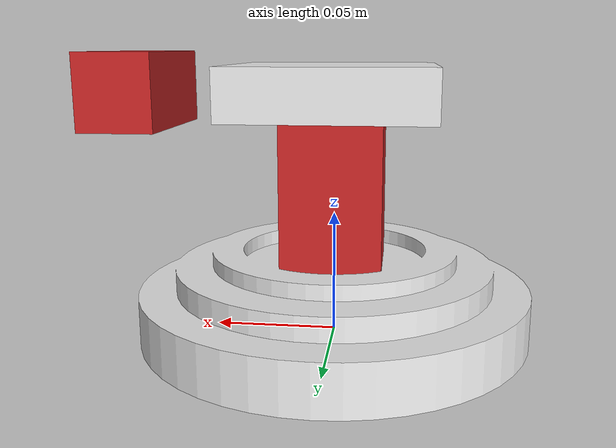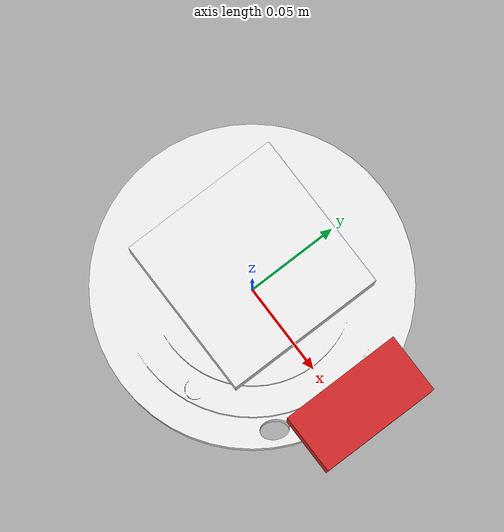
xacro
<?xml version="1.0"?>
<robot xmlns:xacro="http://www.ros.org/wiki/xacro">
    <link name="head_base">
        <visual>
            <origin xyz="0 0 0" rpy="0 0 0" />
            <geometry>
                <mesh filename="package://description/meshes/head_base.stl"
                    scale="0.001 0.001 0.001" />
            </geometry>
            <material name="white" />
        </visual>
        <collision>
            <origin xyz="0 0 0" rpy="0 0 0" />
            <geometry>
                <mesh filename="package://description/meshes/head_base.stl"
                    scale="0.001 0.001 0.001" />
            </geometry>
        </collision>
        <xacro:box_inertia m="0.11" x="0.16" y="0.16" z="0.03540" o_xyz="0 0 0" o_rpy="0 0 0" />
    </link>

    <link name="neck_pan_link">
        <visual>
            <origin xyz="0 0 0.04" rpy="0 0 0" />
            <geometry>
                <box size="0.04 0.04 0.08" />
            </geometry>
            <material name="red" />
        </visual>
        <collision>
            <origin xyz="0 0 0.04" rpy="0 0 0" />
            <geometry>
                <box size="0.04 0.04 0.08" />
            </geometry>
        </collision>
        <xacro:box_inertia m="0.02" x="0.04" y="0.04" z="0.08" o_xyz="0 0 0.04" o_rpy="0 0 0" />
    </link>

    <link name="neck_tilt_link">
        <visual>
            <origin xyz="0 0 0" rpy="0 0 0" />
            <geometry>
                <box size="0.08 0.08 0.02" />
            </geometry>
            <material name="white" />
        </visual>
        <collision>
            <origin xyz="0 0 0" rpy="0 0 0" />
            <geometry>
                <box size="0.08 0.08 0.02" />
            </geometry>
        </collision>
        <xacro:box_inertia m="0.01" x="0.08" y="0.08" z="0.02" o_xyz="0 0 0" o_rpy="0 0 0" />
    </link>

    <link name="camera_link">
        <visual>
            <origin xyz="0 0 0" rpy="0 0 0" />
            <geometry>
                <box size="0.03 0.06 0.03" />
            </geometry>
            <material name="red" />
        </visual>
        <collision>
            <origin xyz="0 0 0" rpy="0 0 0" />
            <geometry>
                <box size="0.03 0.06 0.03" />
            </geometry>
        </collision>
        <xacro:box_inertia m="0.01" x="0.03" y="0.06" z="0.03" o_xyz="0 0 0" o_rpy="0 0 0" />
    </link>

    <joint name="head_base_neck_pan_link" type="revolute">
        <parent link="head_base" />
        <child link="neck_pan_link" />
        <origin xyz="0 0 0.02" rpy="0 0 0" />
        <limit lower="-${pi}" upper="${pi}" effort="100" velocity="100" />
        <axis xyz="0 0 1" />
    </joint>

    <joint name="head_base_tilt_pan_link" type="revolute">
        <parent link="neck_pan_link" />
        <child link="neck_tilt_link" />
        <origin xyz="0 0 0.08" rpy="0 0 0" />
        <limit lower="-${pi}" upper="${pi}" effort="100" velocity="100" />
        <axis xyz="0 1 0" />
        <dynamics damping="2.0" friction="1.0" />
    </joint>

    <joint name="neck_tilt_camera_joint" type="fixed">
        <parent link="neck_tilt_link" />
        <child link="camera_link" />
        <origin xyz="0.08 0 0" rpy="0 0 0" />
    </joint>

    <gazebo reference="camera_link">
        <sensor name="camera" type="camera">
            <pose>0 0 0 0 0 0</pose>
            <topic>camera/image_raw</topic>
            <gz_frame_id>camera_link</gz_frame_id>
            <update_rate>30</update_rate>
            <always_on>1</always_on>
            <visualize>true</visualize>
            <camera>
                <horizontal_fov>1.047</horizontal_fov>
                <image>
                    <width>640</width>
                    <height>480</height>
                    <format>R8G8B8</format>
                </image>
                <clip>
                    <near>0.1</near>
                    <far>100</far>
                </clip>
                <noise>
                    <type>gaussian</type>
                    <mean>0.0</mean>
                    <stddev>0.007</stddev>
                </noise>
            </camera>
        </sensor>
    </gazebo>

</robot>
